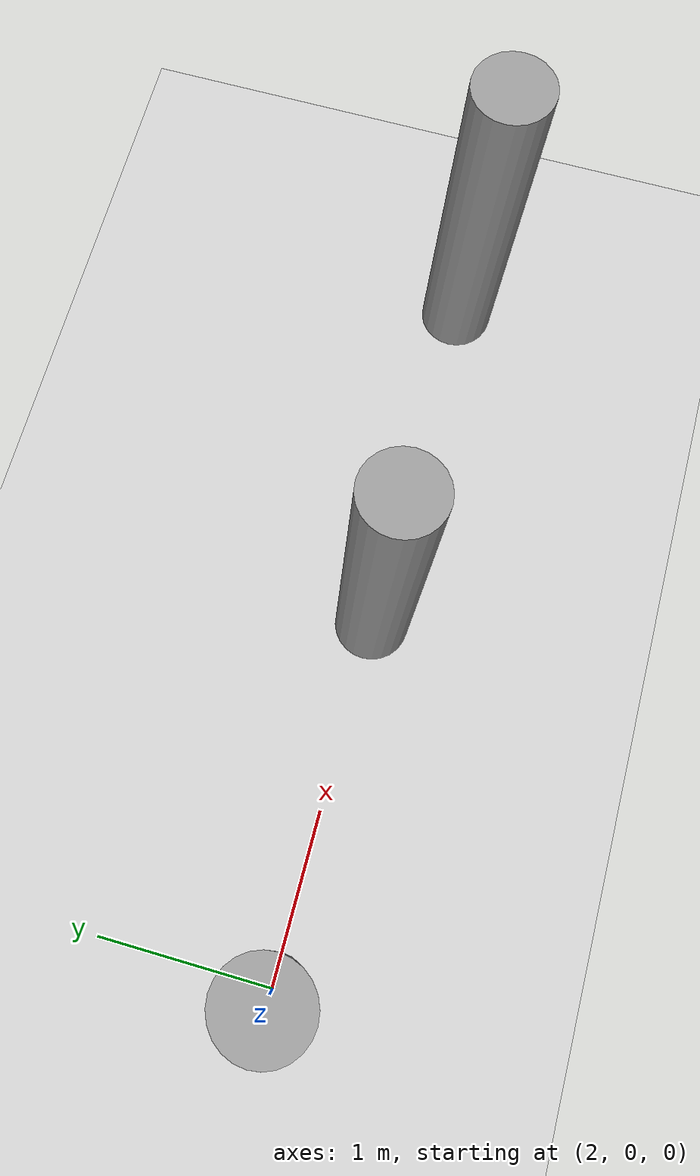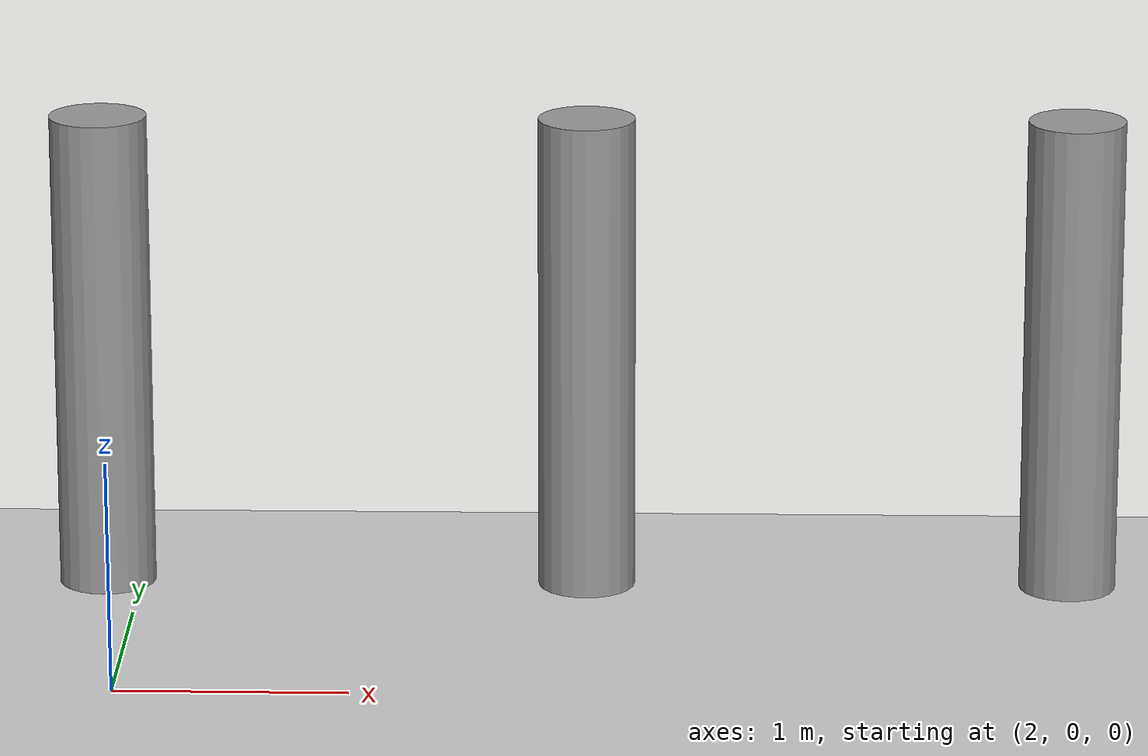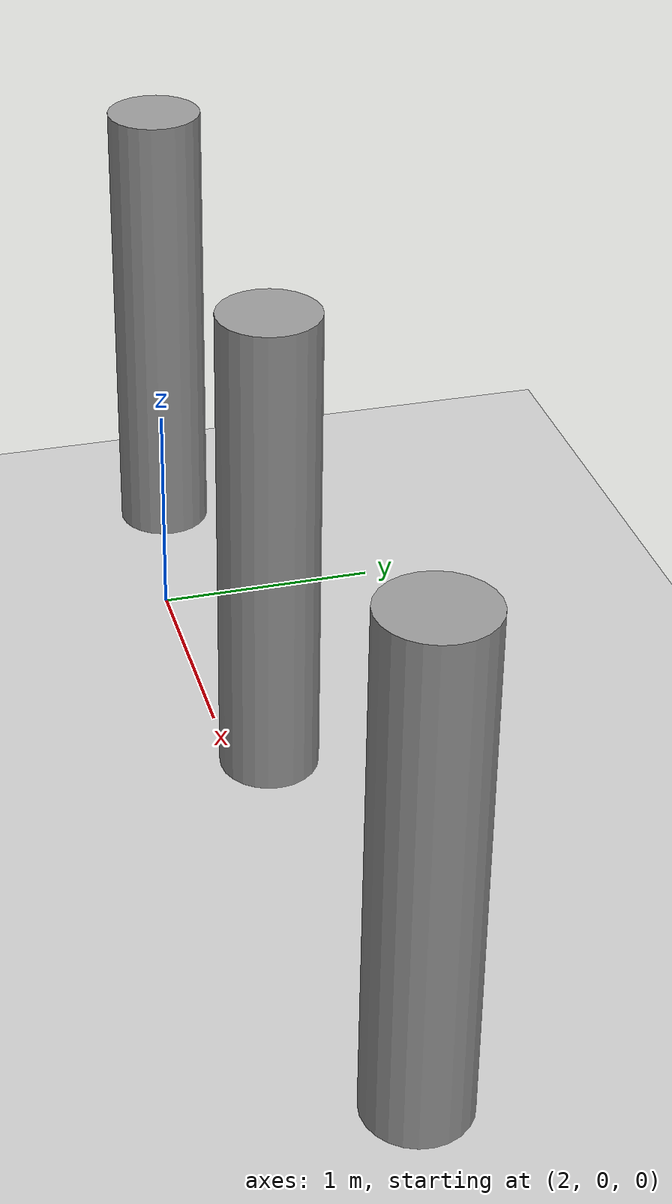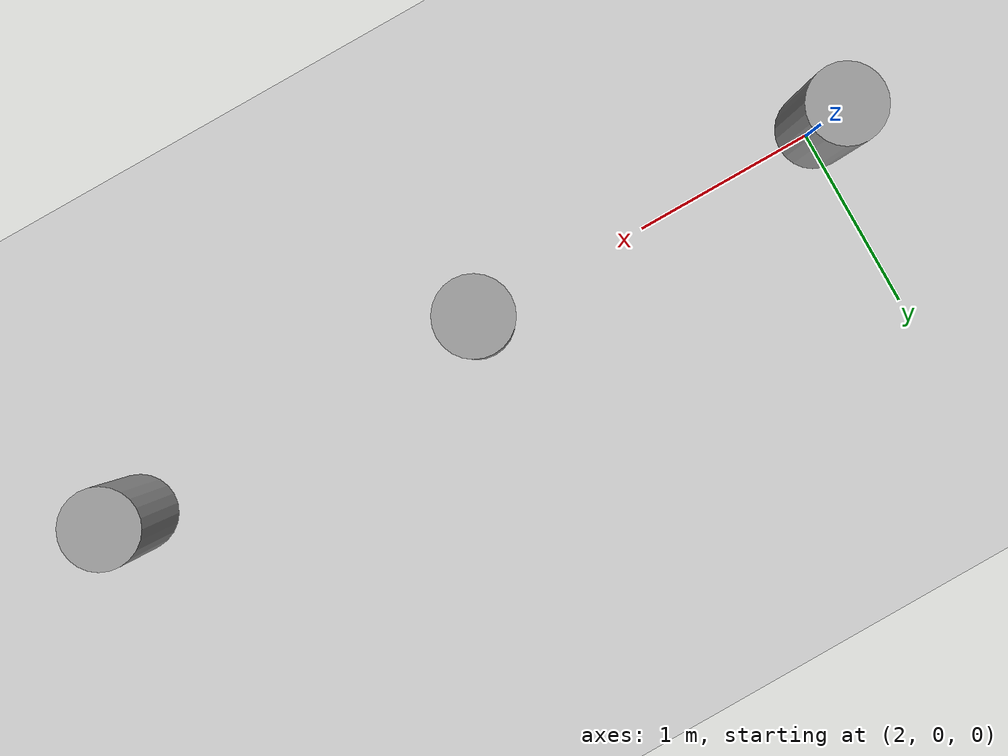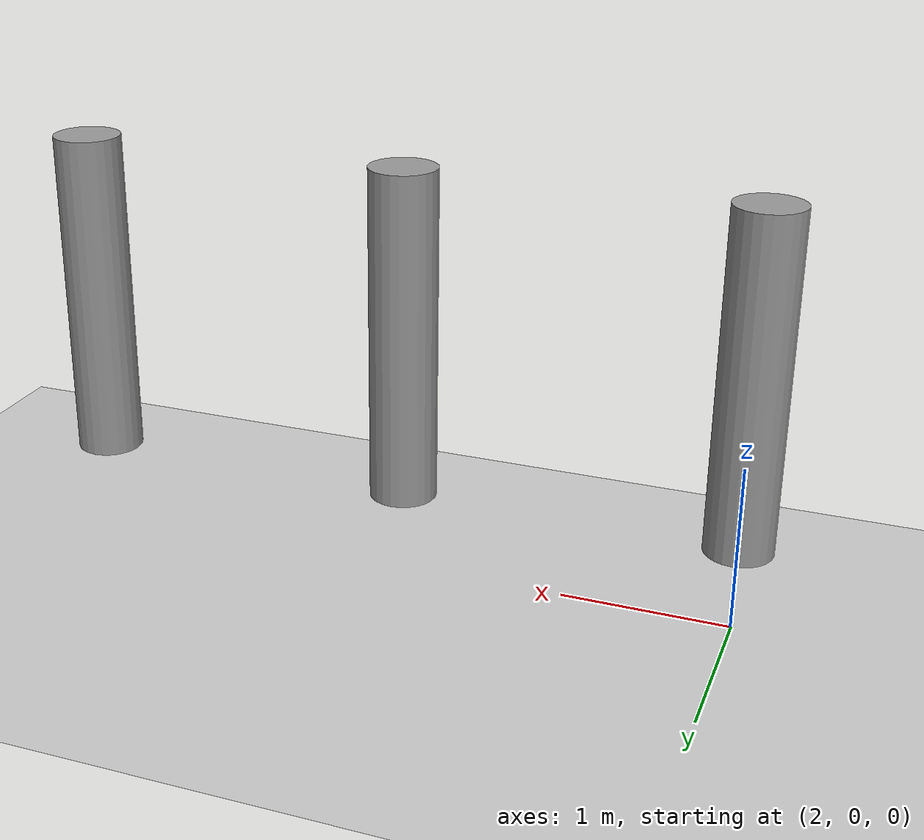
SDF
<?xml version="1.0" ?>
<sdf version="1.5">
  <world name="default">
   <light type="directional" name="sun">
      <cast_shadows>false</cast_shadows>
      <pose>0 0 100 0 0 0</pose>
      <diffuse>0.8 0.8 0.8 1</diffuse>
      <specular>0.9 0.9 0.9 1</specular>
      <attenuation>
        <range>1000</range>
        <constant>0.9</constant>
        <linear>0.01</linear>
        <quadratic>0.001</quadratic>
      </attenuation>
      <direction>0.15 0.15 -0.9</direction>
    </light>

    <!-- A ground plane -->
    <include>
      <uri>model://ground_plane</uri>
    </include>

    <!-- 初始视角 -->
    <gui fullscreen='0'>
      <camera name='user_camera'>
        <pose>-11.0 0.0 7.0 0 0.57 0.0</pose>
        <view_controller>orbit</view_controller>
      </camera>
    </gui>

    <physics type='ode'>
      <gravity>0 0 -9.8066</gravity>
      <ode>
        <solver>
          <type>quick</type>
          <iters>150</iters>
          <sor>1.3</sor>
          <use_dynamic_moi_rescaling>0</use_dynamic_moi_rescaling>
        </solver>
        <constraints>
          <cfm>0.00001</cfm>
          <erp>0.15</erp>
          <contact_max_correcting_vel>1000</contact_max_correcting_vel>
          <contact_surface_layer>0.01</contact_surface_layer>
        </constraints>
      </ode>
      <max_step_size>0.004</max_step_size>
      <real_time_factor>1000.0</real_time_factor>
      <real_time_update_rate>250</real_time_update_rate>
      <magnetic_field>6.0e-6 2.3e-5 -4.2e-5</magnetic_field>
    </physics>

    <!-- 障碍物 -->
    <model name='cylinder_1'>
      <include>
        <uri>model://cylinder</uri>
        <pose>2.0 0.0 1.5 0 0 0</pose>
      </include>
    </model>
    <model name='cylinder_2'>
      <include>
        <uri>model://cylinder</uri>
        <pose>4.0 0.0 1.5 0 0 0</pose>
      </include>
    </model>
    <model name='cylinder_3'>
      <include>
        <uri>model://cylinder</uri>
        <pose>6.0 0.0 1.5 0 0 0</pose>
      </include>
    </model>
    </world>
</sdf>

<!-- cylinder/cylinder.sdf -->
<sdf version='1.6'>
  <model name='cylinder'>
    <link name='link'>
      <inertial>
        <mass>1</mass>
        <pose frame=''>0 0 0 0 -0 0</pose>
      </inertial>
      <self_collide>0</self_collide>
      <enable_wind>0</enable_wind>
      <kinematic>0</kinematic>
      <pose frame=''>0 0 0 0 -0 0</pose>
      <gravity>1</gravity>
      <visual name='visual'>
        <geometry>
          <cylinder>
            <radius>0.2</radius>
            <length>2.0</length>
          </cylinder>
        </geometry>
        <material>
          <script>
            <name>Gazebo/Grey</name>
            <uri>file://media/materials/scripts/gazebo.material</uri>
          </script>
        </material>
        <pose frame=''>0 0 0 0 -0 0</pose>
        <transparency>0</transparency>
        <cast_shadows>1</cast_shadows>
      </visual>
      <collision name='collision'>
        <laser_retro>0</laser_retro>
        <max_contacts>10</max_contacts>
        <pose frame=''>0 0 0 0 -0 0</pose>
        <geometry>
          <cylinder>
            <radius>0.2</radius>
            <length>3.0</length>
          </cylinder>
        </geometry>
      </collision>
    </link>
    <static>1</static>
    <allow_auto_disable>1</allow_auto_disable>
  </model>
</sdf>
